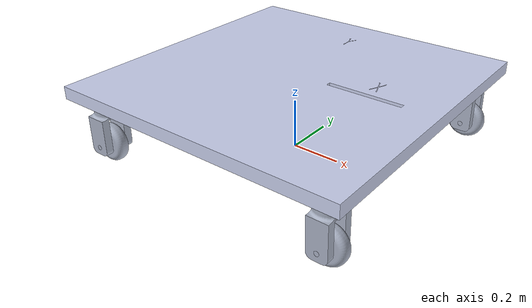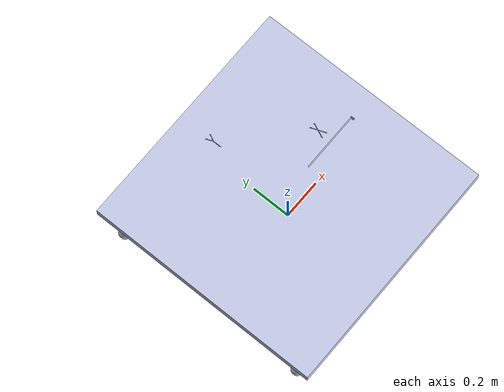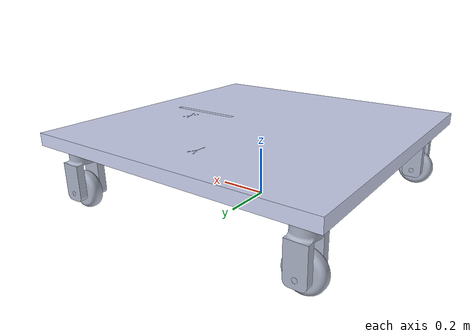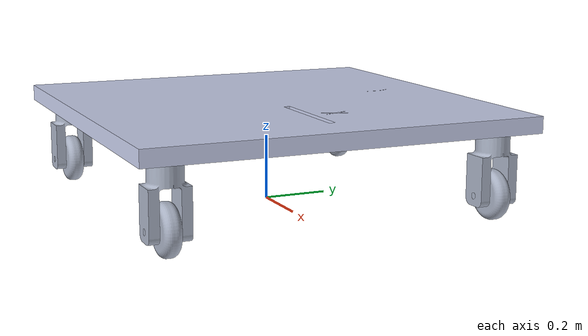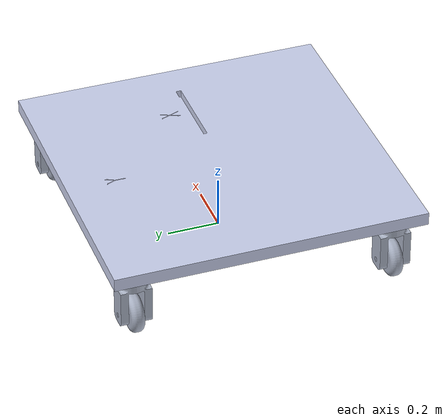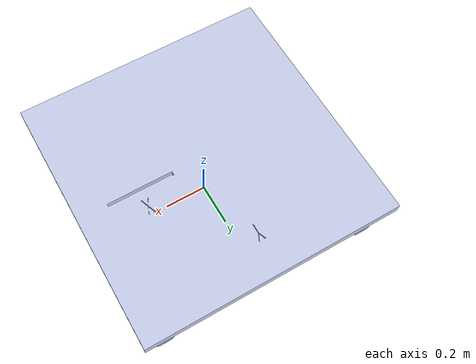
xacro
<?xml version="1.0" encoding="utf-8"?>
<robot name="agv_sim" xmlns:xacro="http://ros.org/wiki/xacro">

  <link name="base_foot_print"/>

  <joint name="foot2base" type="fixed">
    <parent link="base_foot_print"/>
    <child link="base_link"/>
    <origin
      xyz="0 0 0.315"
      rpy="0 0 0" />
  </joint>

  <link
    name="base_link">
    <inertial>
      <origin
        xyz="0.000572457803951106 5.8095694305758E-05 -0.0248970986198941"
        rpy="0 0 0" />
      <mass
        value="70.831722762647" />
      <inertia
        ixx="8.41485617960419"
        ixy="0.0003138074825713"
        ixz="0.000620691878247195"
        iyy="8.39616225644627"
        iyz="6.28598680580758E-05"
        izz="16.7814288389134" />
    </inertial>
    <visual>
      <origin
        xyz="0 0 0"
        rpy="0 0 0" />
      <geometry>
        <mesh
          filename="package://agv_sim/meshes/base_link.STL" />
      </geometry>
      <material
        name="">
        <color
          rgba="0.792156862745098 0.819607843137255 0.933333333333333 1" />
      </material>
    </visual>
    <collision>
      <origin
        xyz="0 0 0"
        rpy="0 0 0" />
      <geometry>
        <mesh
          filename="package://agv_sim/meshes/base_link.STL" />
      </geometry>
    </collision>
  </link>
  <link
    name="link_turn1">
    <inertial>
      <origin
        xyz="-1.57313721468877E-05 2.08881151264606E-09 -0.112603648712901"
        rpy="0 0 0" />
      <mass
        value="4.00473648526945" />
      <inertia
        ixx="0.0253784938511554"
        ixy="-4.20655727353763E-10"
        ixz="-7.80936621694287E-07"
        iyy="0.0224402493991133"
        iyz="-1.7416278261475E-10"
        izz="0.00760667733951808" />
    </inertial>
    <visual>
      <origin
        xyz="0 0 0"
        rpy="0 0 0" />
      <geometry>
        <mesh
          filename="package://agv_sim/meshes/link_turn1.STL" />
      </geometry>
      <material
        name="">
        <color
          rgba="0.666666666666667 0.698039215686274 0.768627450980392 1" />
      </material>
    </visual>
    <collision>
      <origin
        xyz="0 0 0"
        rpy="0 0 0" />
      <geometry>
        <mesh
          filename="package://agv_sim/meshes/link_turn1.STL" />
      </geometry>
    </collision>
  </link>

  <joint
    name="joint_turn1"
    type="revolute">
    <origin
      xyz="0.50147 -0.49985 -0.24"
      rpy="3.1416 0 0" />
    <parent
      link="base_link" />
    <child
      link="link_turn1" />
    <axis
      xyz="0 0 1" />
    <limit
      lower="-6.28"
      upper="6.28"
      effort="6"
      velocity="6.28" />
  </joint>
  <link
    name="link_wheel1">
    <inertial>
      <origin
        xyz="5.55111512312578E-17 0 5.55111512312578E-17"
        rpy="0 0 0" />
      <mass
        value="2.23959617519268" />
      <inertia
        ixx="0.00336281943850301"
        ixy="-1.01893319697208E-36"
        ixz="-2.08070825435685E-20"
        iyy="0.00336281943850301"
        iyz="-3.05466642246581E-36"
        izz="0.0056821214893179" />
    </inertial>
    <visual>
      <origin
        xyz="0 0 0"
        rpy="0 0 0" />
      <geometry>
        <mesh
          filename="package://agv_sim/meshes/link_wheel1.STL" />
      </geometry>
      <material
        name="">
        <color
          rgba="0.666666666666667 0.698039215686274 0.768627450980392 1" />
      </material>
    </visual>
    <collision>
      <origin
        xyz="0 0 0"
        rpy="0 0 0" />
      <geometry>
        <mesh
          filename="package://agv_sim/meshes/link_wheel1.STL" />
      </geometry>
    </collision>
  </link>
  <joint
    name="joint_wheel1"
    type="continuous">
    <origin
      xyz="0 0 0"
      rpy="-1.5708 0 0" />
    <parent
      link="link_turn1" />
    <child
      link="link_wheel1" />
    <axis
      xyz="0 0 1" />
    <limit
      effort="2.5"
      velocity="26.17" />
  </joint>
  <link
    name="link_turn2">
    <inertial>
      <origin
        xyz="-1.57313721468877E-05 2.08881145713491E-09 -0.112603648712903"
        rpy="0 0 0" />
      <mass
        value="4.00473648526945" />
      <inertia
        ixx="0.0253784938511554"
        ixy="-4.2065572642052E-10"
        ixz="-7.80936621695284E-07"
        iyy="0.0224402493991133"
        iyz="-1.74162778061351E-10"
        izz="0.00760667733951808" />
    </inertial>
    <visual>
      <origin
        xyz="0 0 0"
        rpy="0 0 0" />
      <geometry>
        <mesh
          filename="package://agv_sim/meshes/link_turn2.STL" />
      </geometry>
      <material
        name="">
        <color
          rgba="0.666666666666667 0.698039215686274 0.768627450980392 1" />
      </material>
    </visual>
    <collision>
      <origin
        xyz="0 0 0"
        rpy="0 0 0" />
      <geometry>
        <mesh
          filename="package://agv_sim/meshes/link_turn2.STL" />
      </geometry>
    </collision>
  </link>
  <joint
    name="joint_turn2"
    type="revolute">
    <origin
      xyz="0.50147 0.50015 -0.24"
      rpy="3.1416 0 0" />
    <parent
      link="base_link" />
    <child
      link="link_turn2" />
    <axis
      xyz="0 0 1" />
    <limit
      lower="-6.28"
      upper="6.28"
      effort="6"
      velocity="6.28" />
  </joint>
  <link
    name="link_wheel2">
    <inertial>
      <origin
        xyz="-1.55431223447522E-15 -2.77555756156289E-17 9.99200722162641E-16"
        rpy="0 0 0" />
      <mass
        value="2.23959617519268" />
      <inertia
        ixx="0.00336281943850301"
        ixy="-1.96015235160114E-34"
        ixz="-1.60338783836118E-19"
        iyy="0.00336281943850301"
        iyz="-1.6278952830908E-19"
        izz="0.0056821214893179" />
    </inertial>
    <visual>
      <origin
        xyz="0 0 0"
        rpy="0 0 0" />
      <geometry>
        <mesh
          filename="package://agv_sim/meshes/link_wheel2.STL" />
      </geometry>
      <material
        name="">
        <color
          rgba="0.666666666666667 0.698039215686274 0.768627450980392 1" />
      </material>
    </visual>
    <collision>
      <origin
        xyz="0 0 0"
        rpy="0 0 0" />
      <geometry>
        <mesh
          filename="package://agv_sim/meshes/link_wheel2.STL" />
      </geometry>
    </collision>
  </link>
  <joint
    name="joint_wheel2"
    type="continuous">
    <origin
      xyz="0 0 0"
      rpy="1.5708 0 0" />
    <parent
      link="link_turn2" />
    <child
      link="link_wheel2" />
    <axis
      xyz="0 0 1" />
    <limit
      effort="2.5"
      velocity="26.17" />
  </joint>
  <link
    name="link_turn3">
    <inertial>
      <origin
        xyz="-1.57313721469432E-05 2.08881134611261E-09 -0.112603648712901"
        rpy="0 0 0" />
      <mass
        value="4.00473648526944" />
      <inertia
        ixx="0.0253784938511554"
        ixy="-4.20655726066614E-10"
        ixz="-7.8093662169496E-07"
        iyy="0.0224402493991132"
        iyz="-1.74162772229254E-10"
        izz="0.00760667733951807" />
    </inertial>
    <visual>
      <origin
        xyz="0 0 0"
        rpy="0 0 0" />
      <geometry>
        <mesh
          filename="package://agv_sim/meshes/link_turn3.STL" />
      </geometry>
      <material
        name="">
        <color
          rgba="0.666666666666667 0.698039215686274 0.768627450980392 1" />
      </material>
    </visual>
    <collision>
      <origin
        xyz="0 0 0"
        rpy="0 0 0" />
      <geometry>
        <mesh
          filename="package://agv_sim/meshes/link_turn3.STL" />
      </geometry>
    </collision>
  </link>
  <joint
    name="joint_turn3"
    type="revolute">
    <origin
      xyz="-0.49853 0.50015 -0.24"
      rpy="-3.1416 0 0" />
    <parent
      link="base_link" />
    <child
      link="link_turn3" />
    <axis
      xyz="0 0 1" />
    <limit
      lower="-6.28"
      upper="6.28"
      effort="6"
      velocity="6.28" />
  </joint>
  <link
    name="link_wheel3">
    <inertial>
      <origin
        xyz="4.44089209850063E-16 -2.77555756156289E-17 1.11022302462516E-16"
        rpy="0 0 0" />
      <mass
        value="2.23959617519268" />
      <inertia
        ixx="0.00336281943850301"
        ixy="4.31447688135461E-20"
        ixz="3.74225696272364E-21"
        iyy="0.00336281943850301"
        iyz="-4.44840036424112E-20"
        izz="0.00568212148931791" />
    </inertial>
    <visual>
      <origin
        xyz="0 0 0"
        rpy="0 0 0" />
      <geometry>
        <mesh
          filename="package://agv_sim/meshes/link_wheel3.STL" />
      </geometry>
      <material
        name="">
        <color
          rgba="0.666666666666667 0.698039215686274 0.768627450980392 1" />
      </material>
    </visual>
    <collision>
      <origin
        xyz="0 0 0"
        rpy="0 0 0" />
      <geometry>
        <mesh
          filename="package://agv_sim/meshes/link_wheel3.STL" />
      </geometry>
    </collision>
  </link>
  <joint
    name="joint_wheel3"
    type="continuous">
    <origin
      xyz="0 0 0"
      rpy="1.5708 0 0" />
    <parent
      link="link_turn3" />
    <child
      link="link_wheel3" />
    <axis
      xyz="0 0 1" />
    <limit
      effort="2.5"
      velocity="26.17" />
  </joint>
  <link
    name="link_turn4">
    <inertial>
      <origin
        xyz="-1.57313721477204E-05 2.08881151264606E-09 -0.112603648712896"
        rpy="0 0 0" />
      <mass
        value="4.00473648526944" />
      <inertia
        ixx="0.0253784938511554"
        ixy="-4.20655746938193E-10"
        ixz="-7.80936621821724E-07"
        iyy="0.0224402493991132"
        iyz="-1.74162781506843E-10"
        izz="0.00760667733951807" />
    </inertial>
    <visual>
      <origin
        xyz="0 0 0"
        rpy="0 0 0" />
      <geometry>
        <mesh
          filename="package://agv_sim/meshes/link_turn4.STL" />
      </geometry>
      <material
        name="">
        <color
          rgba="0.666666666666667 0.698039215686274 0.768627450980392 1" />
      </material>
    </visual>
    <collision>
      <origin
        xyz="0 0 0"
        rpy="0 0 0" />
      <geometry>
        <mesh
          filename="package://agv_sim/meshes/link_turn4.STL" />
      </geometry>
    </collision>
  </link>
  <joint
    name="joint_turn4"
    type="revolute">
    <origin
      xyz="-0.49853 -0.49985 -0.24"
      rpy="3.1416 0 0" />
    <parent
      link="base_link" />
    <child
      link="link_turn4" />
    <axis
      xyz="0 0 1" />
    <limit
      lower="-6.28"
      upper="6.28"
      effort="6"
      velocity="6.28" />
  </joint>
  <link
    name="link_wheel4">
    <inertial>
      <origin
        xyz="-3.21964677141295E-15 2.77555756156289E-17 -9.43689570931383E-16"
        rpy="0 0 0" />
      <mass
        value="2.23959617519268" />
      <inertia
        ixx="0.00336281943850301"
        ixy="1.96015921784653E-34"
        ixz="1.60338783836118E-19"
        iyy="0.00336281943850301"
        iyz="-1.61646033830288E-19"
        izz="0.0056821214893179" />
    </inertial>
    <visual>
      <origin
        xyz="0 0 0"
        rpy="0 0 0" />
      <geometry>
        <mesh
          filename="package://agv_sim/meshes/link_wheel4.STL" />
      </geometry>
      <material
        name="">
        <color
          rgba="0.666666666666667 0.698039215686274 0.768627450980392 1" />
      </material>
    </visual>
    <collision>
      <origin
        xyz="0 0 0"
        rpy="0 0 0" />
      <geometry>
        <mesh
          filename="package://agv_sim/meshes/link_wheel4.STL" />
      </geometry>
    </collision>
  </link>
  <joint
    name="joint_wheel4"
    type="continuous">
    <origin
      xyz="0 0 0"
      rpy="-1.5708 0 0" />
    <parent
      link="link_turn4" />
    <child
      link="link_wheel4" />
    <axis
      xyz="0 0 -1" />
    <limit
      effort="2.5"
      velocity="26.17" />
  </joint>

  <transmission name="tran_turn1">
    <type>transmission_interface/SimpleTransmission</type>
    <joint name="joint_turn1">
    <hardwareInterface>hardware_interface/EffortJointInterface</hardwareInterface>
    </joint>
    <actuator name="motorturn1">
    <hardwareInterface>hardware_interface/EffortJointInterface</hardwareInterface>
    <mechanicalReduction>1</mechanicalReduction>
    </actuator>
    </transmission>

    <transmission name="tran_turn2">
      <type>transmission_interface/SimpleTransmission</type>
      <joint name="joint_turn2">
      <hardwareInterface>hardware_interface/EffortJointInterface</hardwareInterface>
      </joint>
      <actuator name="motor_turn2">
      <hardwareInterface>hardware_interface/EffortJointInterface</hardwareInterface>
      <mechanicalReduction>1</mechanicalReduction>
      </actuator>
      </transmission>

      <transmission name="tran_turn3">
        <type>transmission_interface/SimpleTransmission</type>
        <joint name="joint_turn3">
        <hardwareInterface>hardware_interface/EffortJointInterface</hardwareInterface>
        </joint>
        <actuator name="motor_turn3">
        <hardwareInterface>hardware_interface/EffortJointInterface</hardwareInterface>
        <mechanicalReduction>1</mechanicalReduction>
        </actuator>
        </transmission>

    <transmission name="tran_turn4">
      <type>transmission_interface/SimpleTransmission</type>
      <joint name="joint_turn4">
      <hardwareInterface>hardware_interface/EffortJointInterface</hardwareInterface>
      </joint>
      <actuator name="motor_turn4">
      <hardwareInterface>hardware_interface/EffortJointInterface</hardwareInterface>
      <mechanicalReduction>1</mechanicalReduction>
      </actuator>
      </transmission>

    <transmission name="tran_wheel1">
      <type>transmission_interface/SimpleTransmission</type>
      <joint name="joint_wheel1">
      <hardwareInterface>hardware_interface/EffortJointInterface</hardwareInterface>
      </joint>
      <actuator name="motor_wheel1">
      <hardwareInterface>hardware_interface/EffortJointInterface</hardwareInterface>
      <mechanicalReduction>1</mechanicalReduction>
      </actuator>
      </transmission>
    <transmission name="tran_wheel2">
      <type>transmission_interface/SimpleTransmission</type>
      <joint name="joint_wheel2">
      <hardwareInterface>hardware_interface/EffortJointInterface</hardwareInterface>
      </joint>
      <actuator name="motor_wheel2">
      <hardwareInterface>hardware_interface/EffortJointInterface</hardwareInterface>
      <mechanicalReduction>1</mechanicalReduction>
      </actuator>
      </transmission>

  <transmission name="tran_wheel3">
    <type>transmission_interface/SimpleTransmission</type>
    <joint name="joint_wheel3">
    <hardwareInterface>hardware_interface/EffortJointInterface</hardwareInterface>
    </joint>
    <actuator name="motor_wheel3">
    <hardwareInterface>hardware_interface/EffortJointInterface</hardwareInterface>
    <mechanicalReduction>1</mechanicalReduction>
    </actuator>
    </transmission>

  <transmission name="tran_wheel4">
    <type>transmission_interface/SimpleTransmission</type>
    <joint name="joint_wheel4">
    <hardwareInterface>hardware_interface/EffortJointInterface</hardwareInterface>
    </joint>
    <actuator name="motor_wheel4">
    <hardwareInterface>hardware_interface/EffortJointInterface</hardwareInterface>
    <mechanicalReduction>1</mechanicalReduction>
    </actuator>
    </transmission>

    <gazebo>
      <plugin name="gazebo_ros_control" filename="libgazebo_ros_control.so">
      <robotNamespace>/agv_sim</robotNamespace>
      <robotSimType>gazebo_ros_control/DefaultRobotHWSim</robotSimType>
      </plugin>
      </gazebo>

      <gazebo>
        <plugin name="joint_state_publisher" filename="libgazebo_ros_joint_state_publisher.so">
          <jointName>joint_turn1, joint_turn2, joint_turn3, joint_turn4, joint_wheel1,joint_wheel2,joint_wheel3,joint_wheel4</jointName>
          <updateRate>50.0</updateRate>
          <robotNamespace>/agv_sim</robotNamespace>
          <alwaysOn>true</alwaysOn>
        </plugin>
      </gazebo>

    <gazebo reference="base_link">
        <mu1 value="0.0"/>
        <mu2 value="0.0"/>
        <kp  value="10000000.0" />
        <kd  value="1.0" />
        <material>Gazebo/Grey</material>
    </gazebo>

    <gazebo reference="link_turn1">
        <mu1 value="2.0"/>
        <mu2 value="2.0"/>
        <kp  value="10000000.0" />
        <kd  value="1.0" />

        <material>Gazebo/Red</material>
    </gazebo>
    <gazebo reference="link_turn2">
        <mu1 value="2.0"/>
        <mu2 value="2.0"/>
        <kp  value="10000000.0" />
        <kd  value="1.0" />

        <material>Gazebo/Grey</material>
    </gazebo>
    <gazebo reference="link_wheel1">
        <mu1 value="2.0"/>
        <mu2 value="2.0"/>
        <kp  value="10000000.0" />
        <kd  value="1.0" />

        <material>Gazebo/Grey</material>
    </gazebo>
    <gazebo reference="link_wheel2">
        <mu1 value="2.0"/>
        <mu2 value="2.0"/>
        <kp  value="10000000.0" />
        <kd  value="1.0" />

        <material>Gazebo/Grey</material>
    </gazebo>
    <gazebo reference="link_wheel3">
        <mu1 value="2.0"/>
        <mu2 value="2.0"/>
        <kp  value="10000000.0" />
        <kd  value="1.0" />

        <material>Gazebo/Grey</material>
    </gazebo>
    <gazebo reference="link_wheel4">
        <mu1 value="2.0"/>
        <mu2 value="2.0"/>
        <kp  value="10000000.0" />
        <kd  value="1.0" />
        <material>Gazebo/Grey</material>
    </gazebo>

</robot>
